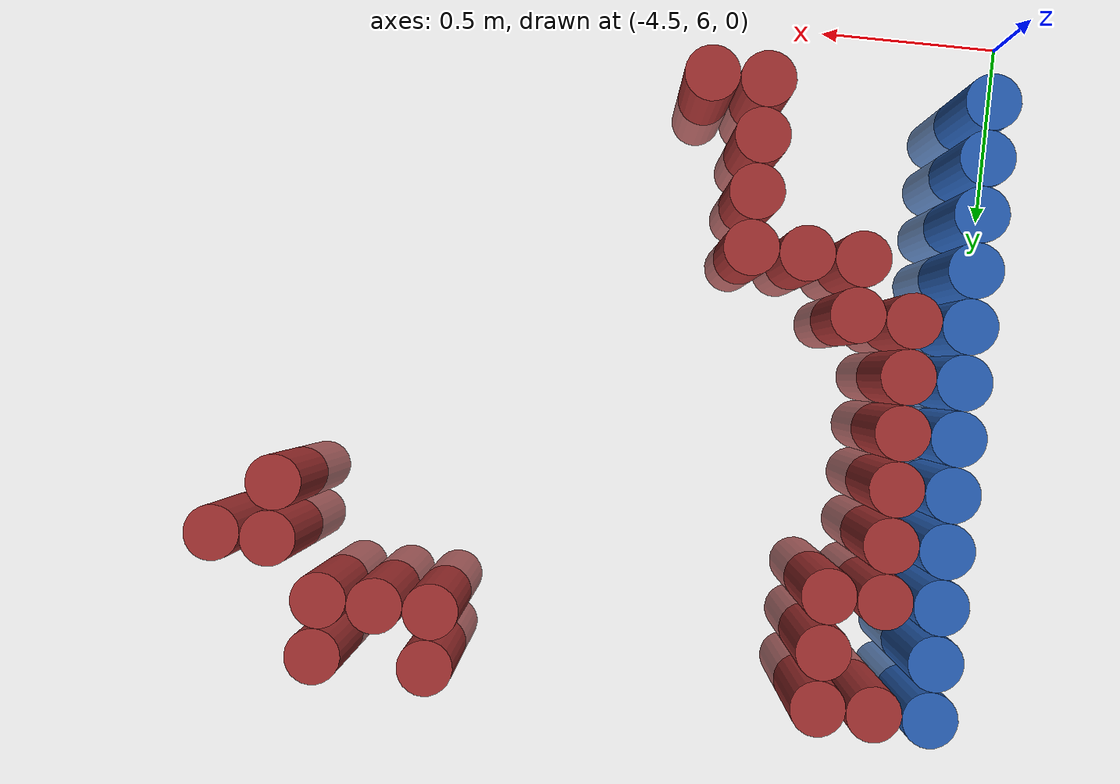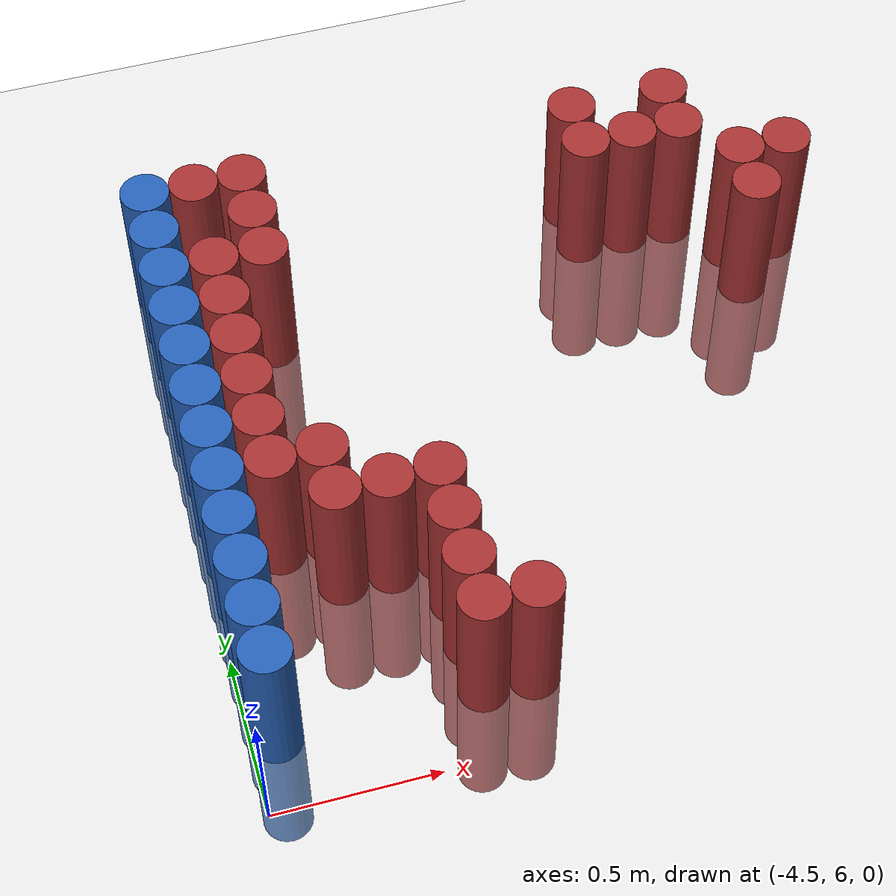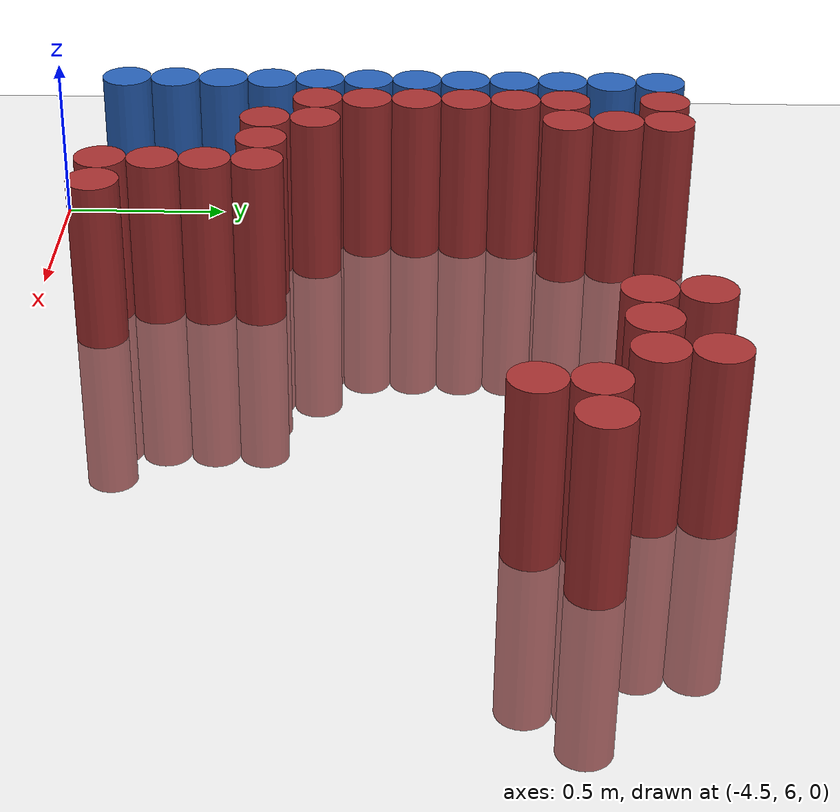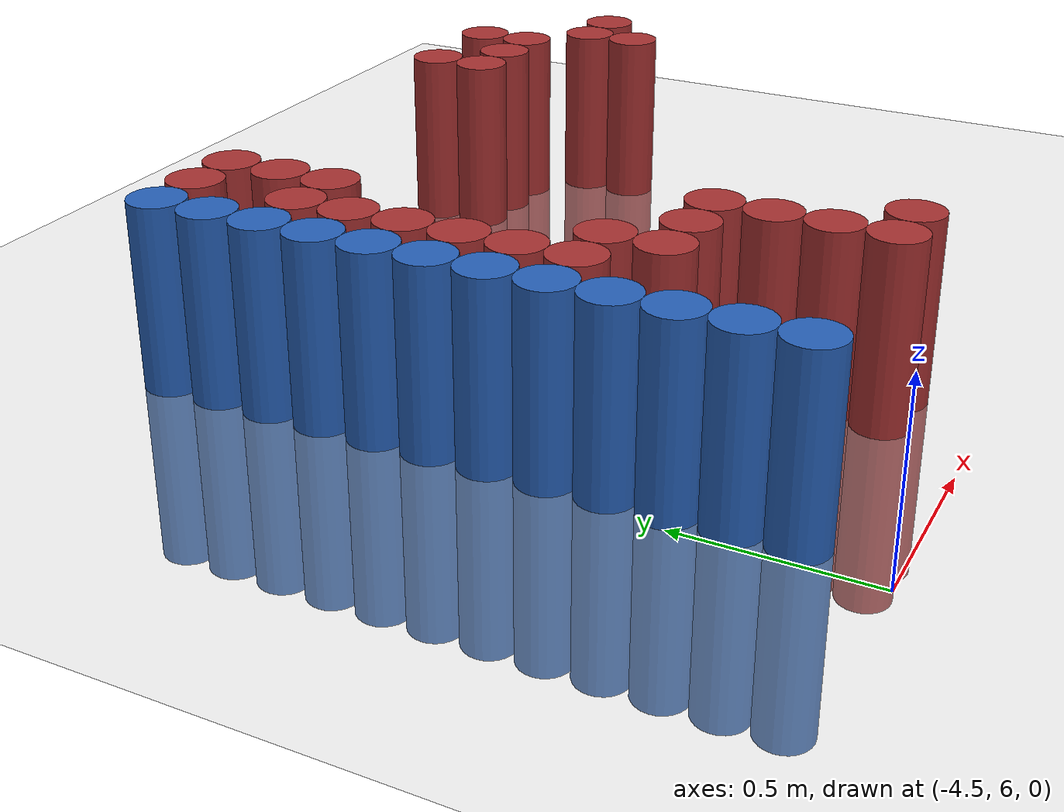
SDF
<sdf version="1.6">
 <world name="default">
  <model name="ground_plane">
   <static>1</static>
   <link name="link">
    <collision name="collision">
     <geometry><plane><normal>0 0 1</normal><size>100 100</size></plane></geometry>
     <surface><friction><ode><mu>100</mu><mu2>50</mu2></ode></friction></surface>
    </collision>
    <visual name="visual">
     <cast_shadows>0</cast_shadows>
     <geometry><plane><normal>0 0 1</normal><size>100 100</size></plane></geometry>
     <material>
      <script><uri>file://media/materials/scripts/gazebo.material</uri><name>Gazebo/Grey</name></script>
     </material>
    </visual>
   </link>
  </model>
  <model name="unit_cylinder_103">
   <static>1</static>
   <pose>-4.425000 6.225000 0.000000 0.000000 0.000000 0.000000</pose>
   <link name="link">
    <inertial>
     <mass>1</mass>
     <inertia><ixx>0.145833</ixx><ixy>0</ixy><ixz>0</ixz><iyy>0.145833</iyy><iyz>0</iyz><izz>0.125</izz></inertia>
    </inertial>
    <collision name="collision">
     <geometry><cylinder><radius>0.075000</radius><length>1</length></cylinder></geometry>
    </collision>
    <visual name="visual">
     <geometry><cylinder><radius>0.075000</radius><length>1</length></cylinder></geometry>
     <material>
      <ambient>0.152000 0.379000 0.720000 1</ambient>
      <diffuse>0.152000 0.379000 0.720000 1</diffuse>
     </material>
     <material>
      <script><name>Gazebo/Grey</name><uri>file://media/materials/scripts/gazebo.material</uri></script>
     </material>
    </visual>
    <sensor name="sensor_contact" type="contact"><contact><collision>collision</collision></contact></sensor>
   </link>
   <plugin filename="gz-sim-touchplugin-system" name="gz::sim::systems::TouchPlugin">
    <target>robot</target>
    <namespace>robot</namespace>
    <time>0.001</time>
    <enabled>true</enabled>
   </plugin>
  </model>
  <model name="unit_cylinder_104">
   <static>1</static>
   <pose>-4.425000 6.375000 0.000000 0.000000 0.000000 0.000000</pose>
   <link name="link">
    <inertial>
     <mass>1</mass>
     <inertia><ixx>0.145833</ixx><ixy>0</ixy><ixz>0</ixz><iyy>0.145833</iyy><iyz>0</iyz><izz>0.125</izz></inertia>
    </inertial>
    <collision name="collision">
     <geometry><cylinder><radius>0.075000</radius><length>1</length></cylinder></geometry>
    </collision>
    <visual name="visual">
     <geometry><cylinder><radius>0.075000</radius><length>1</length></cylinder></geometry>
     <material>
      <ambient>0.152000 0.379000 0.720000 1</ambient>
      <diffuse>0.152000 0.379000 0.720000 1</diffuse>
     </material>
     <material>
      <script><name>Gazebo/Grey</name><uri>file://media/materials/scripts/gazebo.material</uri></script>
     </material>
    </visual>
    <sensor name="sensor_contact" type="contact"><contact><collision>collision</collision></contact></sensor>
   </link>
   <plugin filename="gz-sim-touchplugin-system" name="gz::sim::systems::TouchPlugin">
    <target>robot</target>
    <namespace>robot</namespace>
    <time>0.001</time>
    <enabled>true</enabled>
   </plugin>
  </model>
  <model name="unit_cylinder_105">
   <static>1</static>
   <pose>-4.425000 6.525000 0.000000 0.000000 0.000000 0.000000</pose>
   <link name="link">
    <inertial>
     <mass>1</mass>
     <inertia><ixx>0.145833</ixx><ixy>0</ixy><ixz>0</ixz><iyy>0.145833</iyy><iyz>0</iyz><izz>0.125</izz></inertia>
    </inertial>
    <collision name="collision">
     <geometry><cylinder><radius>0.075000</radius><length>1</length></cylinder></geometry>
    </collision>
    <visual name="visual">
     <geometry><cylinder><radius>0.075000</radius><length>1</length></cylinder></geometry>
     <material>
      <ambient>0.152000 0.379000 0.720000 1</ambient>
      <diffuse>0.152000 0.379000 0.720000 1</diffuse>
     </material>
     <material>
      <script><name>Gazebo/Grey</name><uri>file://media/materials/scripts/gazebo.material</uri></script>
     </material>
    </visual>
    <sensor name="sensor_contact" type="contact"><contact><collision>collision</collision></contact></sensor>
   </link>
   <plugin filename="gz-sim-touchplugin-system" name="gz::sim::systems::TouchPlugin">
    <target>robot</target>
    <namespace>robot</namespace>
    <time>0.001</time>
    <enabled>true</enabled>
   </plugin>
  </model>
  <model name="unit_cylinder_106">
   <static>1</static>
   <pose>-4.425000 6.675000 0.000000 0.000000 0.000000 0.000000</pose>
   <link name="link">
    <inertial>
     <mass>1</mass>
     <inertia><ixx>0.145833</ixx><ixy>0</ixy><ixz>0</ixz><iyy>0.145833</iyy><iyz>0</iyz><izz>0.125</izz></inertia>
    </inertial>
    <collision name="collision">
     <geometry><cylinder><radius>0.075000</radius><length>1</length></cylinder></geometry>
    </collision>
    <visual name="visual">
     <geometry><cylinder><radius>0.075000</radius><length>1</length></cylinder></geometry>
     <material>
      <ambient>0.152000 0.379000 0.720000 1</ambient>
      <diffuse>0.152000 0.379000 0.720000 1</diffuse>
     </material>
     <material>
      <script><name>Gazebo/Grey</name><uri>file://media/materials/scripts/gazebo.material</uri></script>
     </material>
    </visual>
    <sensor name="sensor_contact" type="contact"><contact><collision>collision</collision></contact></sensor>
   </link>
   <plugin filename="gz-sim-touchplugin-system" name="gz::sim::systems::TouchPlugin">
    <target>robot</target>
    <namespace>robot</namespace>
    <time>0.001</time>
    <enabled>true</enabled>
   </plugin>
  </model>
  <model name="unit_cylinder_107">
   <static>1</static>
   <pose>-4.425000 6.825000 0.000000 0.000000 0.000000 0.000000</pose>
   <link name="link">
    <inertial>
     <mass>1</mass>
     <inertia><ixx>0.145833</ixx><ixy>0</ixy><ixz>0</ixz><iyy>0.145833</iyy><iyz>0</iyz><izz>0.125</izz></inertia>
    </inertial>
    <collision name="collision">
     <geometry><cylinder><radius>0.075000</radius><length>1</length></cylinder></geometry>
    </collision>
    <visual name="visual">
     <geometry><cylinder><radius>0.075000</radius><length>1</length></cylinder></geometry>
     <material>
      <ambient>0.152000 0.379000 0.720000 1</ambient>
      <diffuse>0.152000 0.379000 0.720000 1</diffuse>
     </material>
     <material>
      <script><name>Gazebo/Grey</name><uri>file://media/materials/scripts/gazebo.material</uri></script>
     </material>
    </visual>
    <sensor name="sensor_contact" type="contact"><contact><collision>collision</collision></contact></sensor>
   </link>
   <plugin filename="gz-sim-touchplugin-system" name="gz::sim::systems::TouchPlugin">
    <target>robot</target>
    <namespace>robot</namespace>
    <time>0.001</time>
    <enabled>true</enabled>
   </plugin>
  </model>
  <model name="unit_cylinder_108">
   <static>1</static>
   <pose>-4.425000 6.975000 0.000000 0.000000 0.000000 0.000000</pose>
   <link name="link">
    <inertial>
     <mass>1</mass>
     <inertia><ixx>0.145833</ixx><ixy>0</ixy><ixz>0</ixz><iyy>0.145833</iyy><iyz>0</iyz><izz>0.125</izz></inertia>
    </inertial>
    <collision name="collision">
     <geometry><cylinder><radius>0.075000</radius><length>1</length></cylinder></geometry>
    </collision>
    <visual name="visual">
     <geometry><cylinder><radius>0.075000</radius><length>1</length></cylinder></geometry>
     <material>
      <ambient>0.152000 0.379000 0.720000 1</ambient>
      <diffuse>0.152000 0.379000 0.720000 1</diffuse>
     </material>
     <material>
      <script><name>Gazebo/Grey</name><uri>file://media/materials/scripts/gazebo.material</uri></script>
     </material>
    </visual>
    <sensor name="sensor_contact" type="contact"><contact><collision>collision</collision></contact></sensor>
   </link>
   <plugin filename="gz-sim-touchplugin-system" name="gz::sim::systems::TouchPlugin">
    <target>robot</target>
    <namespace>robot</namespace>
    <time>0.001</time>
    <enabled>true</enabled>
   </plugin>
  </model>
  <model name="unit_cylinder_109">
   <static>1</static>
   <pose>-4.425000 7.125000 0.000000 0.000000 0.000000 0.000000</pose>
   <link name="link">
    <inertial>
     <mass>1</mass>
     <inertia><ixx>0.145833</ixx><ixy>0</ixy><ixz>0</ixz><iyy>0.145833</iyy><iyz>0</iyz><izz>0.125</izz></inertia>
    </inertial>
    <collision name="collision">
     <geometry><cylinder><radius>0.075000</radius><length>1</length></cylinder></geometry>
    </collision>
    <visual name="visual">
     <geometry><cylinder><radius>0.075000</radius><length>1</length></cylinder></geometry>
     <material>
      <ambient>0.152000 0.379000 0.720000 1</ambient>
      <diffuse>0.152000 0.379000 0.720000 1</diffuse>
     </material>
     <material>
      <script><name>Gazebo/Grey</name><uri>file://media/materials/scripts/gazebo.material</uri></script>
     </material>
    </visual>
    <sensor name="sensor_contact" type="contact"><contact><collision>collision</collision></contact></sensor>
   </link>
   <plugin filename="gz-sim-touchplugin-system" name="gz::sim::systems::TouchPlugin">
    <target>robot</target>
    <namespace>robot</namespace>
    <time>0.001</time>
    <enabled>true</enabled>
   </plugin>
  </model>
  <model name="unit_cylinder_110">
   <static>1</static>
   <pose>-4.425000 7.275000 0.000000 0.000000 0.000000 0.000000</pose>
   <link name="link">
    <inertial>
     <mass>1</mass>
     <inertia><ixx>0.145833</ixx><ixy>0</ixy><ixz>0</ixz><iyy>0.145833</iyy><iyz>0</iyz><izz>0.125</izz></inertia>
    </inertial>
    <collision name="collision">
     <geometry><cylinder><radius>0.075000</radius><length>1</length></cylinder></geometry>
    </collision>
    <visual name="visual">
     <geometry><cylinder><radius>0.075000</radius><length>1</length></cylinder></geometry>
     <material>
      <ambient>0.152000 0.379000 0.720000 1</ambient>
      <diffuse>0.152000 0.379000 0.720000 1</diffuse>
     </material>
     <material>
      <script><name>Gazebo/Grey</name><uri>file://media/materials/scripts/gazebo.material</uri></script>
     </material>
    </visual>
    <sensor name="sensor_contact" type="contact"><contact><collision>collision</collision></contact></sensor>
   </link>
   <plugin filename="gz-sim-touchplugin-system" name="gz::sim::systems::TouchPlugin">
    <target>robot</target>
    <namespace>robot</namespace>
    <time>0.001</time>
    <enabled>true</enabled>
   </plugin>
  </model>
  <model name="unit_cylinder_111">
   <static>1</static>
   <pose>-4.425000 7.425000 0.000000 0.000000 0.000000 0.000000</pose>
   <link name="link">
    <inertial>
     <mass>1</mass>
     <inertia><ixx>0.145833</ixx><ixy>0</ixy><ixz>0</ixz><iyy>0.145833</iyy><iyz>0</iyz><izz>0.125</izz></inertia>
    </inertial>
    <collision name="collision">
     <geometry><cylinder><radius>0.075000</radius><length>1</length></cylinder></geometry>
    </collision>
    <visual name="visual">
     <geometry><cylinder><radius>0.075000</radius><length>1</length></cylinder></geometry>
     <material>
      <ambient>0.152000 0.379000 0.720000 1</ambient>
      <diffuse>0.152000 0.379000 0.720000 1</diffuse>
     </material>
     <material>
      <script><name>Gazebo/Grey</name><uri>file://media/materials/scripts/gazebo.material</uri></script>
     </material>
    </visual>
    <sensor name="sensor_contact" type="contact"><contact><collision>collision</collision></contact></sensor>
   </link>
   <plugin filename="gz-sim-touchplugin-system" name="gz::sim::systems::TouchPlugin">
    <target>robot</target>
    <namespace>robot</namespace>
    <time>0.001</time>
    <enabled>true</enabled>
   </plugin>
  </model>
  <model name="unit_cylinder_112">
   <static>1</static>
   <pose>-4.425000 7.575000 0.000000 0.000000 0.000000 0.000000</pose>
   <link name="link">
    <inertial>
     <mass>1</mass>
     <inertia><ixx>0.145833</ixx><ixy>0</ixy><ixz>0</ixz><iyy>0.145833</iyy><iyz>0</iyz><izz>0.125</izz></inertia>
    </inertial>
    <collision name="collision">
     <geometry><cylinder><radius>0.075000</radius><length>1</length></cylinder></geometry>
    </collision>
    <visual name="visual">
     <geometry><cylinder><radius>0.075000</radius><length>1</length></cylinder></geometry>
     <material>
      <ambient>0.152000 0.379000 0.720000 1</ambient>
      <diffuse>0.152000 0.379000 0.720000 1</diffuse>
     </material>
     <material>
      <script><name>Gazebo/Grey</name><uri>file://media/materials/scripts/gazebo.material</uri></script>
     </material>
    </visual>
    <sensor name="sensor_contact" type="contact"><contact><collision>collision</collision></contact></sensor>
   </link>
   <plugin filename="gz-sim-touchplugin-system" name="gz::sim::systems::TouchPlugin">
    <target>robot</target>
    <namespace>robot</namespace>
    <time>0.001</time>
    <enabled>true</enabled>
   </plugin>
  </model>
  <model name="unit_cylinder_113">
   <static>1</static>
   <pose>-4.425000 7.725000 0.000000 0.000000 0.000000 0.000000</pose>
   <link name="link">
    <inertial>
     <mass>1</mass>
     <inertia><ixx>0.145833</ixx><ixy>0</ixy><ixz>0</ixz><iyy>0.145833</iyy><iyz>0</iyz><izz>0.125</izz></inertia>
    </inertial>
    <collision name="collision">
     <geometry><cylinder><radius>0.075000</radius><length>1</length></cylinder></geometry>
    </collision>
    <visual name="visual">
     <geometry><cylinder><radius>0.075000</radius><length>1</length></cylinder></geometry>
     <material>
      <ambient>0.152000 0.379000 0.720000 1</ambient>
      <diffuse>0.152000 0.379000 0.720000 1</diffuse>
     </material>
     <material>
      <script><name>Gazebo/Grey</name><uri>file://media/materials/scripts/gazebo.material</uri></script>
     </material>
    </visual>
    <sensor name="sensor_contact" type="contact"><contact><collision>collision</collision></contact></sensor>
   </link>
   <plugin filename="gz-sim-touchplugin-system" name="gz::sim::systems::TouchPlugin">
    <target>robot</target>
    <namespace>robot</namespace>
    <time>0.001</time>
    <enabled>true</enabled>
   </plugin>
  </model>
  <model name="unit_cylinder_114">
   <static>1</static>
   <pose>-4.425000 7.875000 0.000000 0.000000 0.000000 0.000000</pose>
   <link name="link">
    <inertial>
     <mass>1</mass>
     <inertia><ixx>0.145833</ixx><ixy>0</ixy><ixz>0</ixz><iyy>0.145833</iyy><iyz>0</iyz><izz>0.125</izz></inertia>
    </inertial>
    <collision name="collision">
     <geometry><cylinder><radius>0.075000</radius><length>1</length></cylinder></geometry>
    </collision>
    <visual name="visual">
     <geometry><cylinder><radius>0.075000</radius><length>1</length></cylinder></geometry>
     <material>
      <ambient>0.152000 0.379000 0.720000 1</ambient>
      <diffuse>0.152000 0.379000 0.720000 1</diffuse>
     </material>
     <material>
      <script><name>Gazebo/Grey</name><uri>file://media/materials/scripts/gazebo.material</uri></script>
     </material>
    </visual>
    <sensor name="sensor_contact" type="contact"><contact><collision>collision</collision></contact></sensor>
   </link>
   <plugin filename="gz-sim-touchplugin-system" name="gz::sim::systems::TouchPlugin">
    <target>robot</target>
    <namespace>robot</namespace>
    <time>0.001</time>
    <enabled>true</enabled>
   </plugin>
  </model>
  <model name="unit_cylinder_128">
   <static>1</static>
   <pose>-4.275000 6.825000 0.000000 0.000000 0.000000 0.000000</pose>
   <link name="link">
    <inertial>
     <mass>1</mass>
     <inertia><ixx>0.145833</ixx><ixy>0</ixy><ixz>0</ixz><iyy>0.145833</iyy><iyz>0</iyz><izz>0.125</izz></inertia>
    </inertial>
    <collision name="collision">
     <geometry><cylinder><radius>0.075000</radius><length>1</length></cylinder></geometry>
    </collision>
    <visual name="visual">
     <geometry><cylinder><radius>0.075000</radius><length>1</length></cylinder></geometry>
     <material>
      <ambient>0.648000 0.192000 0.192000 1</ambient>
      <diffuse>0.648000 0.192000 0.192000 1</diffuse>
     </material>
     <material>
      <script><name>Gazebo/Grey</name><uri>file://media/materials/scripts/gazebo.material</uri></script>
     </material>
    </visual>
    <sensor name="sensor_contact" type="contact"><contact><collision>collision</collision></contact></sensor>
   </link>
   <plugin filename="gz-sim-touchplugin-system" name="gz::sim::systems::TouchPlugin">
    <target>robot</target>
    <namespace>robot</namespace>
    <time>0.001</time>
    <enabled>true</enabled>
   </plugin>
  </model>
  <model name="unit_cylinder_129">
   <static>1</static>
   <pose>-4.275000 6.975000 0.000000 0.000000 0.000000 0.000000</pose>
   <link name="link">
    <inertial>
     <mass>1</mass>
     <inertia><ixx>0.145833</ixx><ixy>0</ixy><ixz>0</ixz><iyy>0.145833</iyy><iyz>0</iyz><izz>0.125</izz></inertia>
    </inertial>
    <collision name="collision">
     <geometry><cylinder><radius>0.075000</radius><length>1</length></cylinder></geometry>
    </collision>
    <visual name="visual">
     <geometry><cylinder><radius>0.075000</radius><length>1</length></cylinder></geometry>
     <material>
      <ambient>0.648000 0.192000 0.192000 1</ambient>
      <diffuse>0.648000 0.192000 0.192000 1</diffuse>
     </material>
     <material>
      <script><name>Gazebo/Grey</name><uri>file://media/materials/scripts/gazebo.material</uri></script>
     </material>
    </visual>
    <sensor name="sensor_contact" type="contact"><contact><collision>collision</collision></contact></sensor>
   </link>
   <plugin filename="gz-sim-touchplugin-system" name="gz::sim::systems::TouchPlugin">
    <target>robot</target>
    <namespace>robot</namespace>
    <time>0.001</time>
    <enabled>true</enabled>
   </plugin>
  </model>
  <model name="unit_cylinder_130">
   <static>1</static>
   <pose>-4.275000 7.125000 0.000000 0.000000 0.000000 0.000000</pose>
   <link name="link">
    <inertial>
     <mass>1</mass>
     <inertia><ixx>0.145833</ixx><ixy>0</ixy><ixz>0</ixz><iyy>0.145833</iyy><iyz>0</iyz><izz>0.125</izz></inertia>
    </inertial>
    <collision name="collision">
     <geometry><cylinder><radius>0.075000</radius><length>1</length></cylinder></geometry>
    </collision>
    <visual name="visual">
     <geometry><cylinder><radius>0.075000</radius><length>1</length></cylinder></geometry>
     <material>
      <ambient>0.648000 0.192000 0.192000 1</ambient>
      <diffuse>0.648000 0.192000 0.192000 1</diffuse>
     </material>
     <material>
      <script><name>Gazebo/Grey</name><uri>file://media/materials/scripts/gazebo.material</uri></script>
     </material>
    </visual>
    <sensor name="sensor_contact" type="contact"><contact><collision>collision</collision></contact></sensor>
   </link>
   <plugin filename="gz-sim-touchplugin-system" name="gz::sim::systems::TouchPlugin">
    <target>robot</target>
    <namespace>robot</namespace>
    <time>0.001</time>
    <enabled>true</enabled>
   </plugin>
  </model>
  <model name="unit_cylinder_131">
   <static>1</static>
   <pose>-4.275000 7.275000 0.000000 0.000000 0.000000 0.000000</pose>
   <link name="link">
    <inertial>
     <mass>1</mass>
     <inertia><ixx>0.145833</ixx><ixy>0</ixy><ixz>0</ixz><iyy>0.145833</iyy><iyz>0</iyz><izz>0.125</izz></inertia>
    </inertial>
    <collision name="collision">
     <geometry><cylinder><radius>0.075000</radius><length>1</length></cylinder></geometry>
    </collision>
    <visual name="visual">
     <geometry><cylinder><radius>0.075000</radius><length>1</length></cylinder></geometry>
     <material>
      <ambient>0.648000 0.192000 0.192000 1</ambient>
      <diffuse>0.648000 0.192000 0.192000 1</diffuse>
     </material>
     <material>
      <script><name>Gazebo/Grey</name><uri>file://media/materials/scripts/gazebo.material</uri></script>
     </material>
    </visual>
    <sensor name="sensor_contact" type="contact"><contact><collision>collision</collision></contact></sensor>
   </link>
   <plugin filename="gz-sim-touchplugin-system" name="gz::sim::systems::TouchPlugin">
    <target>robot</target>
    <namespace>robot</namespace>
    <time>0.001</time>
    <enabled>true</enabled>
   </plugin>
  </model>
  <model name="unit_cylinder_132">
   <static>1</static>
   <pose>-4.275000 7.425000 0.000000 0.000000 0.000000 0.000000</pose>
   <link name="link">
    <inertial>
     <mass>1</mass>
     <inertia><ixx>0.145833</ixx><ixy>0</ixy><ixz>0</ixz><iyy>0.145833</iyy><iyz>0</iyz><izz>0.125</izz></inertia>
    </inertial>
    <collision name="collision">
     <geometry><cylinder><radius>0.075000</radius><length>1</length></cylinder></geometry>
    </collision>
    <visual name="visual">
     <geometry><cylinder><radius>0.075000</radius><length>1</length></cylinder></geometry>
     <material>
      <ambient>0.648000 0.192000 0.192000 1</ambient>
      <diffuse>0.648000 0.192000 0.192000 1</diffuse>
     </material>
     <material>
      <script><name>Gazebo/Grey</name><uri>file://media/materials/scripts/gazebo.material</uri></script>
     </material>
    </visual>
    <sensor name="sensor_contact" type="contact"><contact><collision>collision</collision></contact></sensor>
   </link>
   <plugin filename="gz-sim-touchplugin-system" name="gz::sim::systems::TouchPlugin">
    <target>robot</target>
    <namespace>robot</namespace>
    <time>0.001</time>
    <enabled>true</enabled>
   </plugin>
  </model>
  <model name="unit_cylinder_133">
   <static>1</static>
   <pose>-4.275000 7.575000 0.000000 0.000000 0.000000 0.000000</pose>
   <link name="link">
    <inertial>
     <mass>1</mass>
     <inertia><ixx>0.145833</ixx><ixy>0</ixy><ixz>0</ixz><iyy>0.145833</iyy><iyz>0</iyz><izz>0.125</izz></inertia>
    </inertial>
    <collision name="collision">
     <geometry><cylinder><radius>0.075000</radius><length>1</length></cylinder></geometry>
    </collision>
    <visual name="visual">
     <geometry><cylinder><radius>0.075000</radius><length>1</length></cylinder></geometry>
     <material>
      <ambient>0.648000 0.192000 0.192000 1</ambient>
      <diffuse>0.648000 0.192000 0.192000 1</diffuse>
     </material>
     <material>
      <script><name>Gazebo/Grey</name><uri>file://media/materials/scripts/gazebo.material</uri></script>
     </material>
    </visual>
    <sensor name="sensor_contact" type="contact"><contact><collision>collision</collision></contact></sensor>
   </link>
   <plugin filename="gz-sim-touchplugin-system" name="gz::sim::systems::TouchPlugin">
    <target>robot</target>
    <namespace>robot</namespace>
    <time>0.001</time>
    <enabled>true</enabled>
   </plugin>
  </model>
  <model name="unit_cylinder_134">
   <static>1</static>
   <pose>-4.275000 7.875000 0.000000 0.000000 0.000000 0.000000</pose>
   <link name="link">
    <inertial>
     <mass>1</mass>
     <inertia><ixx>0.145833</ixx><ixy>0</ixy><ixz>0</ixz><iyy>0.145833</iyy><iyz>0</iyz><izz>0.125</izz></inertia>
    </inertial>
    <collision name="collision">
     <geometry><cylinder><radius>0.075000</radius><length>1</length></cylinder></geometry>
    </collision>
    <visual name="visual">
     <geometry><cylinder><radius>0.075000</radius><length>1</length></cylinder></geometry>
     <material>
      <ambient>0.648000 0.192000 0.192000 1</ambient>
      <diffuse>0.648000 0.192000 0.192000 1</diffuse>
     </material>
     <material>
      <script><name>Gazebo/Grey</name><uri>file://media/materials/scripts/gazebo.material</uri></script>
     </material>
    </visual>
    <sensor name="sensor_contact" type="contact"><contact><collision>collision</collision></contact></sensor>
   </link>
   <plugin filename="gz-sim-touchplugin-system" name="gz::sim::systems::TouchPlugin">
    <target>robot</target>
    <namespace>robot</namespace>
    <time>0.001</time>
    <enabled>true</enabled>
   </plugin>
  </model>
  <model name="unit_cylinder_144">
   <static>1</static>
   <pose>-4.125000 6.675000 0.000000 0.000000 0.000000 0.000000</pose>
   <link name="link">
    <inertial>
     <mass>1</mass>
     <inertia><ixx>0.145833</ixx><ixy>0</ixy><ixz>0</ixz><iyy>0.145833</iyy><iyz>0</iyz><izz>0.125</izz></inertia>
    </inertial>
    <collision name="collision">
     <geometry><cylinder><radius>0.075000</radius><length>1</length></cylinder></geometry>
    </collision>
    <visual name="visual">
     <geometry><cylinder><radius>0.075000</radius><length>1</length></cylinder></geometry>
     <material>
      <ambient>0.648000 0.192000 0.192000 1</ambient>
      <diffuse>0.648000 0.192000 0.192000 1</diffuse>
     </material>
     <material>
      <script><name>Gazebo/Grey</name><uri>file://media/materials/scripts/gazebo.material</uri></script>
     </material>
    </visual>
    <sensor name="sensor_contact" type="contact"><contact><collision>collision</collision></contact></sensor>
   </link>
   <plugin filename="gz-sim-touchplugin-system" name="gz::sim::systems::TouchPlugin">
    <target>robot</target>
    <namespace>robot</namespace>
    <time>0.001</time>
    <enabled>true</enabled>
   </plugin>
  </model>
  <model name="unit_cylinder_145">
   <static>1</static>
   <pose>-4.125000 6.825000 0.000000 0.000000 0.000000 0.000000</pose>
   <link name="link">
    <inertial>
     <mass>1</mass>
     <inertia><ixx>0.145833</ixx><ixy>0</ixy><ixz>0</ixz><iyy>0.145833</iyy><iyz>0</iyz><izz>0.125</izz></inertia>
    </inertial>
    <collision name="collision">
     <geometry><cylinder><radius>0.075000</radius><length>1</length></cylinder></geometry>
    </collision>
    <visual name="visual">
     <geometry><cylinder><radius>0.075000</radius><length>1</length></cylinder></geometry>
     <material>
      <ambient>0.648000 0.192000 0.192000 1</ambient>
      <diffuse>0.648000 0.192000 0.192000 1</diffuse>
     </material>
     <material>
      <script><name>Gazebo/Grey</name><uri>file://media/materials/scripts/gazebo.material</uri></script>
     </material>
    </visual>
    <sensor name="sensor_contact" type="contact"><contact><collision>collision</collision></contact></sensor>
   </link>
   <plugin filename="gz-sim-touchplugin-system" name="gz::sim::systems::TouchPlugin">
    <target>robot</target>
    <namespace>robot</namespace>
    <time>0.001</time>
    <enabled>true</enabled>
   </plugin>
  </model>
  <model name="unit_cylinder_146">
   <static>1</static>
   <pose>-4.125000 7.575000 0.000000 0.000000 0.000000 0.000000</pose>
   <link name="link">
    <inertial>
     <mass>1</mass>
     <inertia><ixx>0.145833</ixx><ixy>0</ixy><ixz>0</ixz><iyy>0.145833</iyy><iyz>0</iyz><izz>0.125</izz></inertia>
    </inertial>
    <collision name="collision">
     <geometry><cylinder><radius>0.075000</radius><length>1</length></cylinder></geometry>
    </collision>
    <visual name="visual">
     <geometry><cylinder><radius>0.075000</radius><length>1</length></cylinder></geometry>
     <material>
      <ambient>0.648000 0.192000 0.192000 1</ambient>
      <diffuse>0.648000 0.192000 0.192000 1</diffuse>
     </material>
     <material>
      <script><name>Gazebo/Grey</name><uri>file://media/materials/scripts/gazebo.material</uri></script>
     </material>
    </visual>
    <sensor name="sensor_contact" type="contact"><contact><collision>collision</collision></contact></sensor>
   </link>
   <plugin filename="gz-sim-touchplugin-system" name="gz::sim::systems::TouchPlugin">
    <target>robot</target>
    <namespace>robot</namespace>
    <time>0.001</time>
    <enabled>true</enabled>
   </plugin>
  </model>
  <model name="unit_cylinder_147">
   <static>1</static>
   <pose>-4.125000 7.725000 0.000000 0.000000 0.000000 0.000000</pose>
   <link name="link">
    <inertial>
     <mass>1</mass>
     <inertia><ixx>0.145833</ixx><ixy>0</ixy><ixz>0</ixz><iyy>0.145833</iyy><iyz>0</iyz><izz>0.125</izz></inertia>
    </inertial>
    <collision name="collision">
     <geometry><cylinder><radius>0.075000</radius><length>1</length></cylinder></geometry>
    </collision>
    <visual name="visual">
     <geometry><cylinder><radius>0.075000</radius><length>1</length></cylinder></geometry>
     <material>
      <ambient>0.648000 0.192000 0.192000 1</ambient>
      <diffuse>0.648000 0.192000 0.192000 1</diffuse>
     </material>
     <material>
      <script><name>Gazebo/Grey</name><uri>file://media/materials/scripts/gazebo.material</uri></script>
     </material>
    </visual>
    <sensor name="sensor_contact" type="contact"><contact><collision>collision</collision></contact></sensor>
   </link>
   <plugin filename="gz-sim-touchplugin-system" name="gz::sim::systems::TouchPlugin">
    <target>robot</target>
    <namespace>robot</namespace>
    <time>0.001</time>
    <enabled>true</enabled>
   </plugin>
  </model>
  <model name="unit_cylinder_148">
   <static>1</static>
   <pose>-4.125000 7.875000 0.000000 0.000000 0.000000 0.000000</pose>
   <link name="link">
    <inertial>
     <mass>1</mass>
     <inertia><ixx>0.145833</ixx><ixy>0</ixy><ixz>0</ixz><iyy>0.145833</iyy><iyz>0</iyz><izz>0.125</izz></inertia>
    </inertial>
    <collision name="collision">
     <geometry><cylinder><radius>0.075000</radius><length>1</length></cylinder></geometry>
    </collision>
    <visual name="visual">
     <geometry><cylinder><radius>0.075000</radius><length>1</length></cylinder></geometry>
     <material>
      <ambient>0.648000 0.192000 0.192000 1</ambient>
      <diffuse>0.648000 0.192000 0.192000 1</diffuse>
     </material>
     <material>
      <script><name>Gazebo/Grey</name><uri>file://media/materials/scripts/gazebo.material</uri></script>
     </material>
    </visual>
    <sensor name="sensor_contact" type="contact"><contact><collision>collision</collision></contact></sensor>
   </link>
   <plugin filename="gz-sim-touchplugin-system" name="gz::sim::systems::TouchPlugin">
    <target>robot</target>
    <namespace>robot</namespace>
    <time>0.001</time>
    <enabled>true</enabled>
   </plugin>
  </model>
  <model name="unit_cylinder_150">
   <static>1</static>
   <pose>-3.975000 6.675000 0.000000 0.000000 0.000000 0.000000</pose>
   <link name="link">
    <inertial>
     <mass>1</mass>
     <inertia><ixx>0.145833</ixx><ixy>0</ixy><ixz>0</ixz><iyy>0.145833</iyy><iyz>0</iyz><izz>0.125</izz></inertia>
    </inertial>
    <collision name="collision">
     <geometry><cylinder><radius>0.075000</radius><length>1</length></cylinder></geometry>
    </collision>
    <visual name="visual">
     <geometry><cylinder><radius>0.075000</radius><length>1</length></cylinder></geometry>
     <material>
      <ambient>0.648000 0.192000 0.192000 1</ambient>
      <diffuse>0.648000 0.192000 0.192000 1</diffuse>
     </material>
     <material>
      <script><name>Gazebo/Grey</name><uri>file://media/materials/scripts/gazebo.material</uri></script>
     </material>
    </visual>
    <sensor name="sensor_contact" type="contact"><contact><collision>collision</collision></contact></sensor>
   </link>
   <plugin filename="gz-sim-touchplugin-system" name="gz::sim::systems::TouchPlugin">
    <target>robot</target>
    <namespace>robot</namespace>
    <time>0.001</time>
    <enabled>true</enabled>
   </plugin>
  </model>
  <model name="unit_cylinder_154">
   <static>1</static>
   <pose>-3.825000 6.225000 0.000000 0.000000 0.000000 0.000000</pose>
   <link name="link">
    <inertial>
     <mass>1</mass>
     <inertia><ixx>0.145833</ixx><ixy>0</ixy><ixz>0</ixz><iyy>0.145833</iyy><iyz>0</iyz><izz>0.125</izz></inertia>
    </inertial>
    <collision name="collision">
     <geometry><cylinder><radius>0.075000</radius><length>1</length></cylinder></geometry>
    </collision>
    <visual name="visual">
     <geometry><cylinder><radius>0.075000</radius><length>1</length></cylinder></geometry>
     <material>
      <ambient>0.648000 0.192000 0.192000 1</ambient>
      <diffuse>0.648000 0.192000 0.192000 1</diffuse>
     </material>
     <material>
      <script><name>Gazebo/Grey</name><uri>file://media/materials/scripts/gazebo.material</uri></script>
     </material>
    </visual>
    <sensor name="sensor_contact" type="contact"><contact><collision>collision</collision></contact></sensor>
   </link>
   <plugin filename="gz-sim-touchplugin-system" name="gz::sim::systems::TouchPlugin">
    <target>robot</target>
    <namespace>robot</namespace>
    <time>0.001</time>
    <enabled>true</enabled>
   </plugin>
  </model>
  <model name="unit_cylinder_155">
   <static>1</static>
   <pose>-3.825000 6.375000 0.000000 0.000000 0.000000 0.000000</pose>
   <link name="link">
    <inertial>
     <mass>1</mass>
     <inertia><ixx>0.145833</ixx><ixy>0</ixy><ixz>0</ixz><iyy>0.145833</iyy><iyz>0</iyz><izz>0.125</izz></inertia>
    </inertial>
    <collision name="collision">
     <geometry><cylinder><radius>0.075000</radius><length>1</length></cylinder></geometry>
    </collision>
    <visual name="visual">
     <geometry><cylinder><radius>0.075000</radius><length>1</length></cylinder></geometry>
     <material>
      <ambient>0.648000 0.192000 0.192000 1</ambient>
      <diffuse>0.648000 0.192000 0.192000 1</diffuse>
     </material>
     <material>
      <script><name>Gazebo/Grey</name><uri>file://media/materials/scripts/gazebo.material</uri></script>
     </material>
    </visual>
    <sensor name="sensor_contact" type="contact"><contact><collision>collision</collision></contact></sensor>
   </link>
   <plugin filename="gz-sim-touchplugin-system" name="gz::sim::systems::TouchPlugin">
    <target>robot</target>
    <namespace>robot</namespace>
    <time>0.001</time>
    <enabled>true</enabled>
   </plugin>
  </model>
  <model name="unit_cylinder_156">
   <static>1</static>
   <pose>-3.825000 6.525000 0.000000 0.000000 0.000000 0.000000</pose>
   <link name="link">
    <inertial>
     <mass>1</mass>
     <inertia><ixx>0.145833</ixx><ixy>0</ixy><ixz>0</ixz><iyy>0.145833</iyy><iyz>0</iyz><izz>0.125</izz></inertia>
    </inertial>
    <collision name="collision">
     <geometry><cylinder><radius>0.075000</radius><length>1</length></cylinder></geometry>
    </collision>
    <visual name="visual">
     <geometry><cylinder><radius>0.075000</radius><length>1</length></cylinder></geometry>
     <material>
      <ambient>0.648000 0.192000 0.192000 1</ambient>
      <diffuse>0.648000 0.192000 0.192000 1</diffuse>
     </material>
     <material>
      <script><name>Gazebo/Grey</name><uri>file://media/materials/scripts/gazebo.material</uri></script>
     </material>
    </visual>
    <sensor name="sensor_contact" type="contact"><contact><collision>collision</collision></contact></sensor>
   </link>
   <plugin filename="gz-sim-touchplugin-system" name="gz::sim::systems::TouchPlugin">
    <target>robot</target>
    <namespace>robot</namespace>
    <time>0.001</time>
    <enabled>true</enabled>
   </plugin>
  </model>
  <model name="unit_cylinder_157">
   <static>1</static>
   <pose>-3.825000 6.675000 0.000000 0.000000 0.000000 0.000000</pose>
   <link name="link">
    <inertial>
     <mass>1</mass>
     <inertia><ixx>0.145833</ixx><ixy>0</ixy><ixz>0</ixz><iyy>0.145833</iyy><iyz>0</iyz><izz>0.125</izz></inertia>
    </inertial>
    <collision name="collision">
     <geometry><cylinder><radius>0.075000</radius><length>1</length></cylinder></geometry>
    </collision>
    <visual name="visual">
     <geometry><cylinder><radius>0.075000</radius><length>1</length></cylinder></geometry>
     <material>
      <ambient>0.648000 0.192000 0.192000 1</ambient>
      <diffuse>0.648000 0.192000 0.192000 1</diffuse>
     </material>
     <material>
      <script><name>Gazebo/Grey</name><uri>file://media/materials/scripts/gazebo.material</uri></script>
     </material>
    </visual>
    <sensor name="sensor_contact" type="contact"><contact><collision>collision</collision></contact></sensor>
   </link>
   <plugin filename="gz-sim-touchplugin-system" name="gz::sim::systems::TouchPlugin">
    <target>robot</target>
    <namespace>robot</namespace>
    <time>0.001</time>
    <enabled>true</enabled>
   </plugin>
  </model>
  <model name="unit_cylinder_160">
   <static>1</static>
   <pose>-3.675000 6.225000 0.000000 0.000000 0.000000 0.000000</pose>
   <link name="link">
    <inertial>
     <mass>1</mass>
     <inertia><ixx>0.145833</ixx><ixy>0</ixy><ixz>0</ixz><iyy>0.145833</iyy><iyz>0</iyz><izz>0.125</izz></inertia>
    </inertial>
    <collision name="collision">
     <geometry><cylinder><radius>0.075000</radius><length>1</length></cylinder></geometry>
    </collision>
    <visual name="visual">
     <geometry><cylinder><radius>0.075000</radius><length>1</length></cylinder></geometry>
     <material>
      <ambient>0.648000 0.192000 0.192000 1</ambient>
      <diffuse>0.648000 0.192000 0.192000 1</diffuse>
     </material>
     <material>
      <script><name>Gazebo/Grey</name><uri>file://media/materials/scripts/gazebo.material</uri></script>
     </material>
    </visual>
    <sensor name="sensor_contact" type="contact"><contact><collision>collision</collision></contact></sensor>
   </link>
   <plugin filename="gz-sim-touchplugin-system" name="gz::sim::systems::TouchPlugin">
    <target>robot</target>
    <namespace>robot</namespace>
    <time>0.001</time>
    <enabled>true</enabled>
   </plugin>
  </model>
  <model name="unit_cylinder_167">
   <static>1</static>
   <pose>-3.075000 7.725000 0.000000 0.000000 0.000000 0.000000</pose>
   <link name="link">
    <inertial>
     <mass>1</mass>
     <inertia><ixx>0.145833</ixx><ixy>0</ixy><ixz>0</ixz><iyy>0.145833</iyy><iyz>0</iyz><izz>0.125</izz></inertia>
    </inertial>
    <collision name="collision">
     <geometry><cylinder><radius>0.075000</radius><length>1</length></cylinder></geometry>
    </collision>
    <visual name="visual">
     <geometry><cylinder><radius>0.075000</radius><length>1</length></cylinder></geometry>
     <material>
      <ambient>0.648000 0.192000 0.192000 1</ambient>
      <diffuse>0.648000 0.192000 0.192000 1</diffuse>
     </material>
     <material>
      <script><name>Gazebo/Grey</name><uri>file://media/materials/scripts/gazebo.material</uri></script>
     </material>
    </visual>
    <sensor name="sensor_contact" type="contact"><contact><collision>collision</collision></contact></sensor>
   </link>
   <plugin filename="gz-sim-touchplugin-system" name="gz::sim::systems::TouchPlugin">
    <target>robot</target>
    <namespace>robot</namespace>
    <time>0.001</time>
    <enabled>true</enabled>
   </plugin>
  </model>
  <model name="unit_cylinder_168">
   <static>1</static>
   <pose>-3.075000 7.875000 0.000000 0.000000 0.000000 0.000000</pose>
   <link name="link">
    <inertial>
     <mass>1</mass>
     <inertia><ixx>0.145833</ixx><ixy>0</ixy><ixz>0</ixz><iyy>0.145833</iyy><iyz>0</iyz><izz>0.125</izz></inertia>
    </inertial>
    <collision name="collision">
     <geometry><cylinder><radius>0.075000</radius><length>1</length></cylinder></geometry>
    </collision>
    <visual name="visual">
     <geometry><cylinder><radius>0.075000</radius><length>1</length></cylinder></geometry>
     <material>
      <ambient>0.648000 0.192000 0.192000 1</ambient>
      <diffuse>0.648000 0.192000 0.192000 1</diffuse>
     </material>
     <material>
      <script><name>Gazebo/Grey</name><uri>file://media/materials/scripts/gazebo.material</uri></script>
     </material>
    </visual>
    <sensor name="sensor_contact" type="contact"><contact><collision>collision</collision></contact></sensor>
   </link>
   <plugin filename="gz-sim-touchplugin-system" name="gz::sim::systems::TouchPlugin">
    <target>robot</target>
    <namespace>robot</namespace>
    <time>0.001</time>
    <enabled>true</enabled>
   </plugin>
  </model>
  <model name="unit_cylinder_173">
   <static>1</static>
   <pose>-2.925000 7.725000 0.000000 0.000000 0.000000 0.000000</pose>
   <link name="link">
    <inertial>
     <mass>1</mass>
     <inertia><ixx>0.145833</ixx><ixy>0</ixy><ixz>0</ixz><iyy>0.145833</iyy><iyz>0</iyz><izz>0.125</izz></inertia>
    </inertial>
    <collision name="collision">
     <geometry><cylinder><radius>0.075000</radius><length>1</length></cylinder></geometry>
    </collision>
    <visual name="visual">
     <geometry><cylinder><radius>0.075000</radius><length>1</length></cylinder></geometry>
     <material>
      <ambient>0.648000 0.192000 0.192000 1</ambient>
      <diffuse>0.648000 0.192000 0.192000 1</diffuse>
     </material>
     <material>
      <script><name>Gazebo/Grey</name><uri>file://media/materials/scripts/gazebo.material</uri></script>
     </material>
    </visual>
    <sensor name="sensor_contact" type="contact"><contact><collision>collision</collision></contact></sensor>
   </link>
   <plugin filename="gz-sim-touchplugin-system" name="gz::sim::systems::TouchPlugin">
    <target>robot</target>
    <namespace>robot</namespace>
    <time>0.001</time>
    <enabled>true</enabled>
   </plugin>
  </model>
  <model name="unit_cylinder_178">
   <static>1</static>
   <pose>-2.775000 7.725000 0.000000 0.000000 0.000000 0.000000</pose>
   <link name="link">
    <inertial>
     <mass>1</mass>
     <inertia><ixx>0.145833</ixx><ixy>0</ixy><ixz>0</ixz><iyy>0.145833</iyy><iyz>0</iyz><izz>0.125</izz></inertia>
    </inertial>
    <collision name="collision">
     <geometry><cylinder><radius>0.075000</radius><length>1</length></cylinder></geometry>
    </collision>
    <visual name="visual">
     <geometry><cylinder><radius>0.075000</radius><length>1</length></cylinder></geometry>
     <material>
      <ambient>0.648000 0.192000 0.192000 1</ambient>
      <diffuse>0.648000 0.192000 0.192000 1</diffuse>
     </material>
     <material>
      <script><name>Gazebo/Grey</name><uri>file://media/materials/scripts/gazebo.material</uri></script>
     </material>
    </visual>
    <sensor name="sensor_contact" type="contact"><contact><collision>collision</collision></contact></sensor>
   </link>
   <plugin filename="gz-sim-touchplugin-system" name="gz::sim::systems::TouchPlugin">
    <target>robot</target>
    <namespace>robot</namespace>
    <time>0.001</time>
    <enabled>true</enabled>
   </plugin>
  </model>
  <model name="unit_cylinder_179">
   <static>1</static>
   <pose>-2.775000 7.875000 0.000000 0.000000 0.000000 0.000000</pose>
   <link name="link">
    <inertial>
     <mass>1</mass>
     <inertia><ixx>0.145833</ixx><ixy>0</ixy><ixz>0</ixz><iyy>0.145833</iyy><iyz>0</iyz><izz>0.125</izz></inertia>
    </inertial>
    <collision name="collision">
     <geometry><cylinder><radius>0.075000</radius><length>1</length></cylinder></geometry>
    </collision>
    <visual name="visual">
     <geometry><cylinder><radius>0.075000</radius><length>1</length></cylinder></geometry>
     <material>
      <ambient>0.648000 0.192000 0.192000 1</ambient>
      <diffuse>0.648000 0.192000 0.192000 1</diffuse>
     </material>
     <material>
      <script><name>Gazebo/Grey</name><uri>file://media/materials/scripts/gazebo.material</uri></script>
     </material>
    </visual>
    <sensor name="sensor_contact" type="contact"><contact><collision>collision</collision></contact></sensor>
   </link>
   <plugin filename="gz-sim-touchplugin-system" name="gz::sim::systems::TouchPlugin">
    <target>robot</target>
    <namespace>robot</namespace>
    <time>0.001</time>
    <enabled>true</enabled>
   </plugin>
  </model>
  <model name="unit_cylinder_186">
   <static>1</static>
   <pose>-2.625000 7.425000 0.000000 0.000000 0.000000 0.000000</pose>
   <link name="link">
    <inertial>
     <mass>1</mass>
     <inertia><ixx>0.145833</ixx><ixy>0</ixy><ixz>0</ixz><iyy>0.145833</iyy><iyz>0</iyz><izz>0.125</izz></inertia>
    </inertial>
    <collision name="collision">
     <geometry><cylinder><radius>0.075000</radius><length>1</length></cylinder></geometry>
    </collision>
    <visual name="visual">
     <geometry><cylinder><radius>0.075000</radius><length>1</length></cylinder></geometry>
     <material>
      <ambient>0.648000 0.192000 0.192000 1</ambient>
      <diffuse>0.648000 0.192000 0.192000 1</diffuse>
     </material>
     <material>
      <script><name>Gazebo/Grey</name><uri>file://media/materials/scripts/gazebo.material</uri></script>
     </material>
    </visual>
    <sensor name="sensor_contact" type="contact"><contact><collision>collision</collision></contact></sensor>
   </link>
   <plugin filename="gz-sim-touchplugin-system" name="gz::sim::systems::TouchPlugin">
    <target>robot</target>
    <namespace>robot</namespace>
    <time>0.001</time>
    <enabled>true</enabled>
   </plugin>
  </model>
  <model name="unit_cylinder_187">
   <static>1</static>
   <pose>-2.625000 7.575000 0.000000 0.000000 0.000000 0.000000</pose>
   <link name="link">
    <inertial>
     <mass>1</mass>
     <inertia><ixx>0.145833</ixx><ixy>0</ixy><ixz>0</ixz><iyy>0.145833</iyy><iyz>0</iyz><izz>0.125</izz></inertia>
    </inertial>
    <collision name="collision">
     <geometry><cylinder><radius>0.075000</radius><length>1</length></cylinder></geometry>
    </collision>
    <visual name="visual">
     <geometry><cylinder><radius>0.075000</radius><length>1</length></cylinder></geometry>
     <material>
      <ambient>0.648000 0.192000 0.192000 1</ambient>
      <diffuse>0.648000 0.192000 0.192000 1</diffuse>
     </material>
     <material>
      <script><name>Gazebo/Grey</name><uri>file://media/materials/scripts/gazebo.material</uri></script>
     </material>
    </visual>
    <sensor name="sensor_contact" type="contact"><contact><collision>collision</collision></contact></sensor>
   </link>
   <plugin filename="gz-sim-touchplugin-system" name="gz::sim::systems::TouchPlugin">
    <target>robot</target>
    <namespace>robot</namespace>
    <time>0.001</time>
    <enabled>true</enabled>
   </plugin>
  </model>
  <model name="unit_cylinder_195">
   <static>1</static>
   <pose>-2.475000 7.575000 0.000000 0.000000 0.000000 0.000000</pose>
   <link name="link">
    <inertial>
     <mass>1</mass>
     <inertia><ixx>0.145833</ixx><ixy>0</ixy><ixz>0</ixz><iyy>0.145833</iyy><iyz>0</iyz><izz>0.125</izz></inertia>
    </inertial>
    <collision name="collision">
     <geometry><cylinder><radius>0.075000</radius><length>1</length></cylinder></geometry>
    </collision>
    <visual name="visual">
     <geometry><cylinder><radius>0.075000</radius><length>1</length></cylinder></geometry>
     <material>
      <ambient>0.648000 0.192000 0.192000 1</ambient>
      <diffuse>0.648000 0.192000 0.192000 1</diffuse>
     </material>
     <material>
      <script><name>Gazebo/Grey</name><uri>file://media/materials/scripts/gazebo.material</uri></script>
     </material>
    </visual>
    <sensor name="sensor_contact" type="contact"><contact><collision>collision</collision></contact></sensor>
   </link>
   <plugin filename="gz-sim-touchplugin-system" name="gz::sim::systems::TouchPlugin">
    <target>robot</target>
    <namespace>robot</namespace>
    <time>0.001</time>
    <enabled>true</enabled>
   </plugin>
  </model>
 </world>
</sdf>
